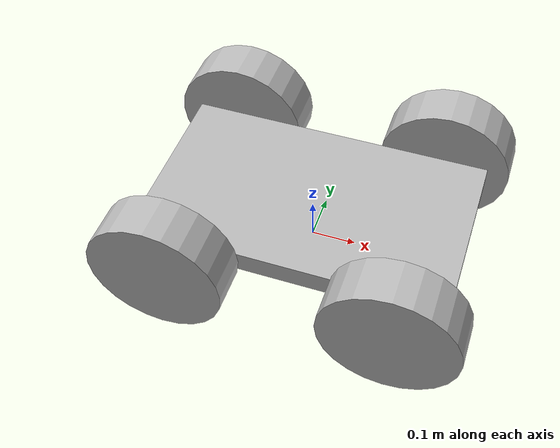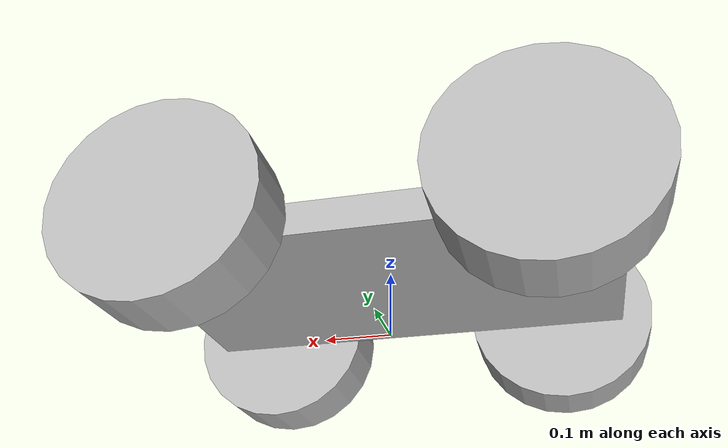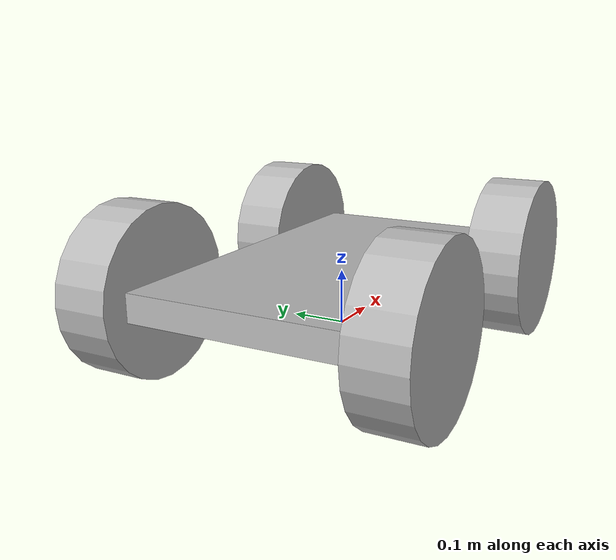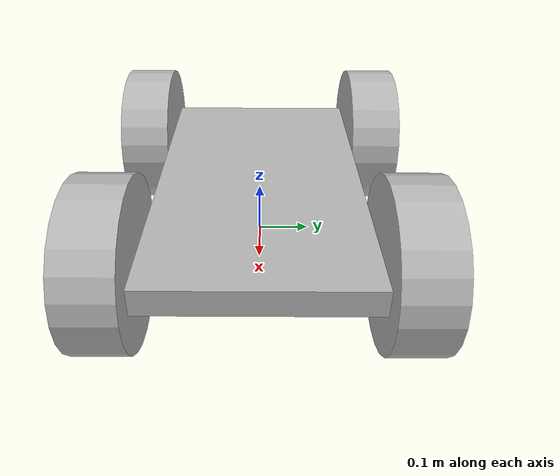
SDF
<?xml version='1.0'?>
<sdf version='1.4'>
  <model name="my_robot">
  <static>false</static>
   <link name='chassis'>
            <pose>0 0 .1 0 0 0</pose>

            <collision name='collision'>
              <geometry>
                <box>
                  <size>.7 .4 .05</size>
                </box>
              </geometry>
            </collision>

            <visual name='visual'>
              <geometry>
                <box>
                  <size>.7 .4 .05</size>
                </box>
              </geometry>
            </visual>

          </link>
    <link name="front_left_wheel">
        <pose>0.25 0.25 0.1 0 1.5707 1.5707</pose>
        <collision name="collision">
          <geometry>
            <cylinder>
              <radius>.15</radius>
              <length>0.1</length>
            </cylinder>
          </geometry>
        </collision>
        <visual name="visual">
          <geometry>
            <cylinder>
              <radius>.15</radius>
              <length>0.1</length>
            </cylinder>
          </geometry>
        </visual>
        </link>

        <link name="front_right_wheel">
        <pose>0.25 -0.25 0.1 0 1.5707 1.5707</pose>
        <collision name="collision">
          <geometry>
            <cylinder>
              <radius>.15</radius>
              <length>.1</length>
            </cylinder>
          </geometry>
        </collision>
        <visual name="visual">
          <geometry>
            <cylinder>
              <radius>.15</radius>
              <length>.1</length>
            </cylinder>
          </geometry>
        </visual>
        </link>

        <link name="back_right_wheel">
        <pose>-0.25 -0.25 0.1 0 1.5707 1.5707</pose>
        <collision name="collision">
          <geometry>
            <cylinder>
              <radius>.15</radius>
              <length>.1</length>
            </cylinder>
          </geometry>
        </collision>
        <visual name="visual">
          <geometry>
            <cylinder>
              <radius>.15</radius>
              <length>.1</length>
            </cylinder>
          </geometry>
        </visual>
        </link>

        <link name="back_left_wheel">
        <pose>-0.25 0.25 0.1 0 1.5707 1.5707</pose>
        <collision name="collision">
          <geometry>
            <cylinder>
              <radius>.15</radius>
              <length>.1</length>
            </cylinder>
          </geometry>
        </collision>
        <visual name="visual">
          <geometry>
            <cylinder>
              <radius>.15</radius>
              <length>.1</length>
            </cylinder>
          </geometry>
        </visual>
        </link>

          <joint type="revolute" name="front_left_wheel_hinge">
        <pose>0 0 -0.03 0 0 0</pose>
        <child>front_left_wheel</child>
        <parent>chassis</parent>
        <axis>
          <xyz>0 1 0</xyz>
        </axis>
      </joint>

      <joint type="revolute" name="front_right_wheel_hinge">
        <pose>0 0 0.03 0 0 0</pose>
        <child>front_right_wheel</child>
        <parent>chassis</parent>
        <axis>
          <xyz>0 1 0</xyz>
        </axis>
      </joint>

      <joint type="revolute" name="back_left_wheel_hinge">
        <pose>0 0 -0.03 0 0 0</pose>
        <child>back_left_wheel</child>
        <parent>chassis</parent>
        <axis>
          <xyz>0 1 0</xyz>
        </axis>
      </joint>

      <joint type="revolute" name="back_right_wheel_hinge">
        <pose>0 0 0.03 0 0 0</pose>
        <child>back_right_wheel</child>
        <parent>chassis</parent>
        <axis>
          <xyz>0 1 0</xyz>
        </axis>
      </joint>
  </model>
</sdf>
